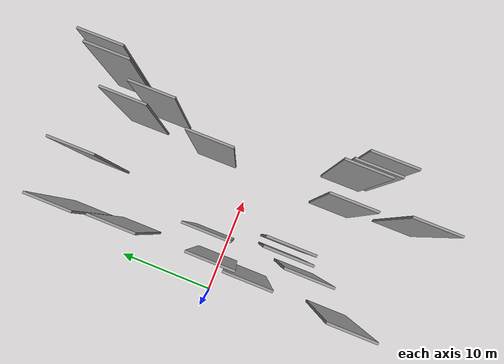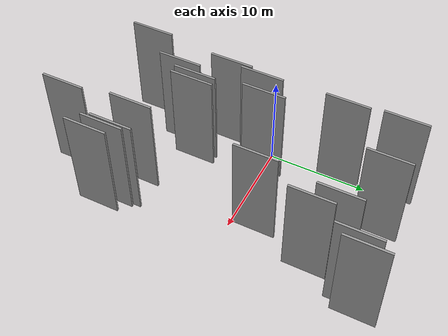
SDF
<sdf version="1.6">
 <world name="default">
  <scene>
   <sky><clouds><speed>12</speed></clouds></sky>
   <ambient>0.4 0.4 0.4 1</ambient>
   <background>0.7 0.7 0.7 1</background>
   <shadows>1</shadows>
  </scene>
  <gravity>0 0 -9.8066</gravity>
  <magnetic_field>6e-06 2.3e-05 -4.2e-05</magnetic_field>
  <physics default="0" name="default_physics" type="ode">
   <ode>
    <solver>
     <type>quick</type>
     <iters>10</iters>
     <sor>1.0</sor>
     <use_dynamic_moi_rescaling>0</use_dynamic_moi_rescaling>
    </solver>
    <constraints>
     <cfm>0</cfm>
     <erp>0.2</erp>
     <contact_max_correcting_vel>100</contact_max_correcting_vel>
     <contact_surface_layer>0.001</contact_surface_layer>
    </constraints>
   </ode>
   <max_step_size>0.004</max_step_size>
   <real_time_factor>1</real_time_factor>
   <real_time_update_rate>250</real_time_update_rate>
  </physics>
  <light name="sun" type="directional">
   <pose>0 0 10 0 0 0</pose>
   <diffuse>0.8 0.8 0.8 1</diffuse>
   <specular>0.2 0.2 0.2 1</specular>
   <attenuation>
    <range>1000</range>
    <constant>0.9</constant>
    <linear>0.01</linear>
    <quadratic>0.001</quadratic>
   </attenuation>
   <direction>-0.5 0.1 -0.9</direction>
  </light>
  <model name="grey_wall_1">
   <static>1</static>
   <pose>4.1126 0.3558 5.0 0.000000 0.000000 1.570796</pose>
   <link name="link">
    <pose>0 0 5.00 0 0 0</pose>
    <collision name="collision"><geometry><box><size>4.00 0.2 10.00</size></box></geometry></collision>
    <visual name="visual">
     <cast_shadows>0</cast_shadows>
     <geometry><box><size>4.00 0.2 10.00</size></box></geometry>
     <material>
      <script>
       <uri>model://grey_wall/materials/scripts</uri>
       <uri>model://grey_wall/materials/textures</uri>
       <name>vrc/grey_wall</name>
      </script>
     </material>
    </visual>
   </link>
  </model>
  <model name="grey_wall_2">
   <static>1</static>
   <pose>7.3676 -4.8340 5.0 0.000000 0.000000 1.570796</pose>
   <link name="link">
    <pose>0 0 5.00 0 0 0</pose>
    <collision name="collision"><geometry><box><size>4.00 0.2 10.00</size></box></geometry></collision>
    <visual name="visual">
     <cast_shadows>0</cast_shadows>
     <geometry><box><size>4.00 0.2 10.00</size></box></geometry>
     <material>
      <script>
       <uri>model://grey_wall/materials/scripts</uri>
       <uri>model://grey_wall/materials/textures</uri>
       <name>vrc/grey_wall</name>
      </script>
     </material>
    </visual>
   </link>
  </model>
  <model name="grey_wall_3">
   <static>1</static>
   <pose>16.9383 14.7797 5.0 0.000000 0.000000 1.570796</pose>
   <link name="link">
    <pose>0 0 5.00 0 0 0</pose>
    <collision name="collision"><geometry><box><size>4.00 0.2 10.00</size></box></geometry></collision>
    <visual name="visual">
     <cast_shadows>0</cast_shadows>
     <geometry><box><size>4.00 0.2 10.00</size></box></geometry>
     <material>
      <script>
       <uri>model://grey_wall/materials/scripts</uri>
       <uri>model://grey_wall/materials/textures</uri>
       <name>vrc/grey_wall</name>
      </script>
     </material>
    </visual>
   </link>
  </model>
  <model name="grey_wall_4">
   <static>1</static>
   <pose>16.2707 -9.8278 5.0 0.000000 0.000000 1.570796</pose>
   <link name="link">
    <pose>0 0 5.00 0 0 0</pose>
    <collision name="collision"><geometry><box><size>4.00 0.2 10.00</size></box></geometry></collision>
    <visual name="visual">
     <cast_shadows>0</cast_shadows>
     <geometry><box><size>4.00 0.2 10.00</size></box></geometry>
     <material>
      <script>
       <uri>model://grey_wall/materials/scripts</uri>
       <uri>model://grey_wall/materials/textures</uri>
       <name>vrc/grey_wall</name>
      </script>
     </material>
    </visual>
   </link>
  </model>
  <model name="grey_wall_5">
   <static>1</static>
   <pose>3.6789 13.2735 5.0 0.000000 0.000000 1.570796</pose>
   <link name="link">
    <pose>0 0 5.00 0 0 0</pose>
    <collision name="collision"><geometry><box><size>4.00 0.2 10.00</size></box></geometry></collision>
    <visual name="visual">
     <cast_shadows>0</cast_shadows>
     <geometry><box><size>4.00 0.2 10.00</size></box></geometry>
     <material>
      <script>
       <uri>model://grey_wall/materials/scripts</uri>
       <uri>model://grey_wall/materials/textures</uri>
       <name>vrc/grey_wall</name>
      </script>
     </material>
    </visual>
   </link>
  </model>
  <model name="grey_wall_6">
   <static>1</static>
   <pose>12.6422 3.8409 5.0 0.000000 0.000000 1.570796</pose>
   <link name="link">
    <pose>0 0 5.00 0 0 0</pose>
    <collision name="collision"><geometry><box><size>4.00 0.2 10.00</size></box></geometry></collision>
    <visual name="visual">
     <cast_shadows>0</cast_shadows>
     <geometry><box><size>4.00 0.2 10.00</size></box></geometry>
     <material>
      <script>
       <uri>model://grey_wall/materials/scripts</uri>
       <uri>model://grey_wall/materials/textures</uri>
       <name>vrc/grey_wall</name>
      </script>
     </material>
    </visual>
   </link>
  </model>
  <model name="grey_wall_7">
   <static>1</static>
   <pose>6.0064 1.4068 5.0 0.000000 0.000000 1.570796</pose>
   <link name="link">
    <pose>0 0 5.00 0 0 0</pose>
    <collision name="collision"><geometry><box><size>4.00 0.2 10.00</size></box></geometry></collision>
    <visual name="visual">
     <cast_shadows>0</cast_shadows>
     <geometry><box><size>4.00 0.2 10.00</size></box></geometry>
     <material>
      <script>
       <uri>model://grey_wall/materials/scripts</uri>
       <uri>model://grey_wall/materials/textures</uri>
       <name>vrc/grey_wall</name>
      </script>
     </material>
    </visual>
   </link>
  </model>
  <model name="grey_wall_8">
   <static>1</static>
   <pose>3.7806 -2.7580 5.0 0.000000 0.000000 1.570796</pose>
   <link name="link">
    <pose>0 0 5.00 0 0 0</pose>
    <collision name="collision"><geometry><box><size>4.00 0.2 10.00</size></box></geometry></collision>
    <visual name="visual">
     <cast_shadows>0</cast_shadows>
     <geometry><box><size>4.00 0.2 10.00</size></box></geometry>
     <material>
      <script>
       <uri>model://grey_wall/materials/scripts</uri>
       <uri>model://grey_wall/materials/textures</uri>
       <name>vrc/grey_wall</name>
      </script>
     </material>
    </visual>
   </link>
  </model>
  <model name="grey_wall_9">
   <static>1</static>
   <pose>5.6703 -6.8890 5.0 0.000000 0.000000 1.570796</pose>
   <link name="link">
    <pose>0 0 5.00 0 0 0</pose>
    <collision name="collision"><geometry><box><size>4.00 0.2 10.00</size></box></geometry></collision>
    <visual name="visual">
     <cast_shadows>0</cast_shadows>
     <geometry><box><size>4.00 0.2 10.00</size></box></geometry>
     <material>
      <script>
       <uri>model://grey_wall/materials/scripts</uri>
       <uri>model://grey_wall/materials/textures</uri>
       <name>vrc/grey_wall</name>
      </script>
     </material>
    </visual>
   </link>
  </model>
  <model name="grey_wall_10">
   <static>1</static>
   <pose>16.1272 13.8947 5.0 0.000000 0.000000 1.570796</pose>
   <link name="link">
    <pose>0 0 5.00 0 0 0</pose>
    <collision name="collision"><geometry><box><size>4.00 0.2 10.00</size></box></geometry></collision>
    <visual name="visual">
     <cast_shadows>0</cast_shadows>
     <geometry><box><size>4.00 0.2 10.00</size></box></geometry>
     <material>
      <script>
       <uri>model://grey_wall/materials/scripts</uri>
       <uri>model://grey_wall/materials/textures</uri>
       <name>vrc/grey_wall</name>
      </script>
     </material>
    </visual>
   </link>
  </model>
  <model name="grey_wall_11">
   <static>1</static>
   <pose>6.5978 -4.9118 5.0 0.000000 0.000000 1.570796</pose>
   <link name="link">
    <pose>0 0 5.00 0 0 0</pose>
    <collision name="collision"><geometry><box><size>4.00 0.2 10.00</size></box></geometry></collision>
    <visual name="visual">
     <cast_shadows>0</cast_shadows>
     <geometry><box><size>4.00 0.2 10.00</size></box></geometry>
     <material>
      <script>
       <uri>model://grey_wall/materials/scripts</uri>
       <uri>model://grey_wall/materials/textures</uri>
       <name>vrc/grey_wall</name>
      </script>
     </material>
    </visual>
   </link>
  </model>
  <model name="grey_wall_12">
   <static>1</static>
   <pose>13.2692 11.2890 5.0 0.000000 0.000000 1.570796</pose>
   <link name="link">
    <pose>0 0 5.00 0 0 0</pose>
    <collision name="collision"><geometry><box><size>4.00 0.2 10.00</size></box></geometry></collision>
    <visual name="visual">
     <cast_shadows>0</cast_shadows>
     <geometry><box><size>4.00 0.2 10.00</size></box></geometry>
     <material>
      <script>
       <uri>model://grey_wall/materials/scripts</uri>
       <uri>model://grey_wall/materials/textures</uri>
       <name>vrc/grey_wall</name>
      </script>
     </material>
    </visual>
   </link>
  </model>
  <model name="grey_wall_13">
   <static>1</static>
   <pose>3.1629 -11.1318 5.0 0.000000 0.000000 1.570796</pose>
   <link name="link">
    <pose>0 0 5.00 0 0 0</pose>
    <collision name="collision"><geometry><box><size>4.00 0.2 10.00</size></box></geometry></collision>
    <visual name="visual">
     <cast_shadows>0</cast_shadows>
     <geometry><box><size>4.00 0.2 10.00</size></box></geometry>
     <material>
      <script>
       <uri>model://grey_wall/materials/scripts</uri>
       <uri>model://grey_wall/materials/textures</uri>
       <name>vrc/grey_wall</name>
      </script>
     </material>
    </visual>
   </link>
  </model>
  <model name="grey_wall_14">
   <static>1</static>
   <pose>3.9390 8.2262 5.0 0.000000 0.000000 1.570796</pose>
   <link name="link">
    <pose>0 0 5.00 0 0 0</pose>
    <collision name="collision"><geometry><box><size>4.00 0.2 10.00</size></box></geometry></collision>
    <visual name="visual">
     <cast_shadows>0</cast_shadows>
     <geometry><box><size>4.00 0.2 10.00</size></box></geometry>
     <material>
      <script>
       <uri>model://grey_wall/materials/scripts</uri>
       <uri>model://grey_wall/materials/textures</uri>
       <name>vrc/grey_wall</name>
      </script>
     </material>
    </visual>
   </link>
  </model>
  <model name="grey_wall_15">
   <static>1</static>
   <pose>15.2631 -8.9007 5.0 0.000000 0.000000 1.570796</pose>
   <link name="link">
    <pose>0 0 5.00 0 0 0</pose>
    <collision name="collision"><geometry><box><size>4.00 0.2 10.00</size></box></geometry></collision>
    <visual name="visual">
     <cast_shadows>0</cast_shadows>
     <geometry><box><size>4.00 0.2 10.00</size></box></geometry>
     <material>
      <script>
       <uri>model://grey_wall/materials/scripts</uri>
       <uri>model://grey_wall/materials/textures</uri>
       <name>vrc/grey_wall</name>
      </script>
     </material>
    </visual>
   </link>
  </model>
  <model name="grey_wall_16">
   <static>1</static>
   <pose>12.6993 -14.4395 5.0 0.000000 0.000000 1.570796</pose>
   <link name="link">
    <pose>0 0 5.00 0 0 0</pose>
    <collision name="collision"><geometry><box><size>4.00 0.2 10.00</size></box></geometry></collision>
    <visual name="visual">
     <cast_shadows>0</cast_shadows>
     <geometry><box><size>4.00 0.2 10.00</size></box></geometry>
     <material>
      <script>
       <uri>model://grey_wall/materials/scripts</uri>
       <uri>model://grey_wall/materials/textures</uri>
       <name>vrc/grey_wall</name>
      </script>
     </material>
    </visual>
   </link>
  </model>
  <model name="grey_wall_17">
   <static>1</static>
   <pose>8.2468 13.4351 5.0 0.000000 0.000000 1.570796</pose>
   <link name="link">
    <pose>0 0 5.00 0 0 0</pose>
    <collision name="collision"><geometry><box><size>4.00 0.2 10.00</size></box></geometry></collision>
    <visual name="visual">
     <cast_shadows>0</cast_shadows>
     <geometry><box><size>4.00 0.2 10.00</size></box></geometry>
     <material>
      <script>
       <uri>model://grey_wall/materials/scripts</uri>
       <uri>model://grey_wall/materials/textures</uri>
       <name>vrc/grey_wall</name>
      </script>
     </material>
    </visual>
   </link>
  </model>
  <model name="grey_wall_18">
   <static>1</static>
   <pose>14.9471 -8.2165 5.0 0.000000 0.000000 1.570796</pose>
   <link name="link">
    <pose>0 0 5.00 0 0 0</pose>
    <collision name="collision"><geometry><box><size>4.00 0.2 10.00</size></box></geometry></collision>
    <visual name="visual">
     <cast_shadows>0</cast_shadows>
     <geometry><box><size>4.00 0.2 10.00</size></box></geometry>
     <material>
      <script>
       <uri>model://grey_wall/materials/scripts</uri>
       <uri>model://grey_wall/materials/textures</uri>
       <name>vrc/grey_wall</name>
      </script>
     </material>
    </visual>
   </link>
  </model>
  <model name="grey_wall_19">
   <static>1</static>
   <pose>12.1136 -8.0549 5.0 0.000000 0.000000 1.570796</pose>
   <link name="link">
    <pose>0 0 5.00 0 0 0</pose>
    <collision name="collision"><geometry><box><size>4.00 0.2 10.00</size></box></geometry></collision>
    <visual name="visual">
     <cast_shadows>0</cast_shadows>
     <geometry><box><size>4.00 0.2 10.00</size></box></geometry>
     <material>
      <script>
       <uri>model://grey_wall/materials/scripts</uri>
       <uri>model://grey_wall/materials/textures</uri>
       <name>vrc/grey_wall</name>
      </script>
     </material>
    </visual>
   </link>
  </model>
  <model name="grey_wall_20">
   <static>1</static>
   <pose>14.5503 9.4474 5.0 0.000000 0.000000 1.570796</pose>
   <link name="link">
    <pose>0 0 5.00 0 0 0</pose>
    <collision name="collision"><geometry><box><size>4.00 0.2 10.00</size></box></geometry></collision>
    <visual name="visual">
     <cast_shadows>0</cast_shadows>
     <geometry><box><size>4.00 0.2 10.00</size></box></geometry>
     <material>
      <script>
       <uri>model://grey_wall/materials/scripts</uri>
       <uri>model://grey_wall/materials/textures</uri>
       <name>vrc/grey_wall</name>
      </script>
     </material>
    </visual>
   </link>
  </model>
 </world>
</sdf>
